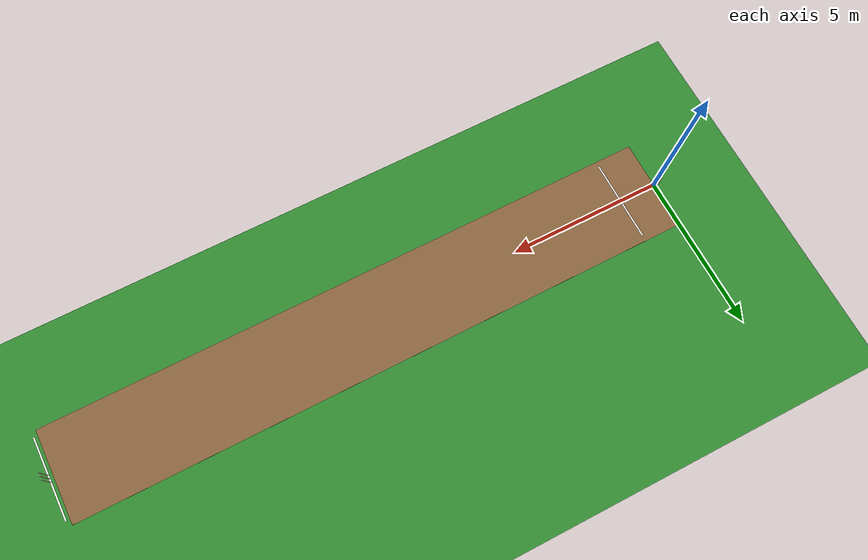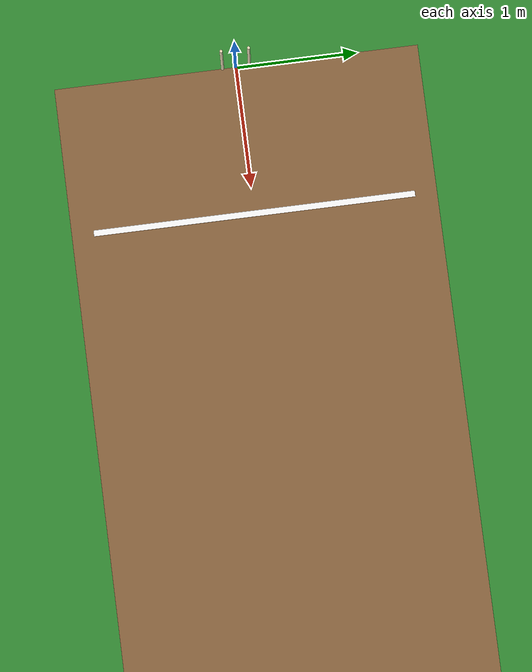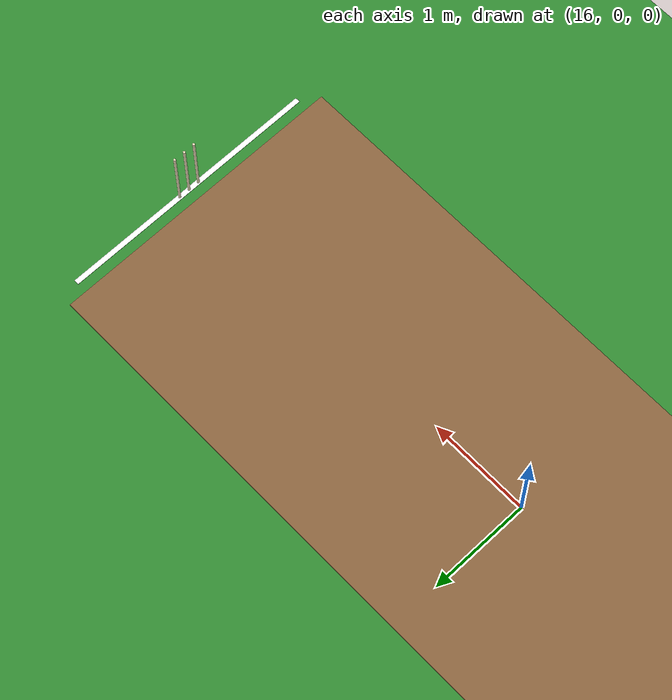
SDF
<?xml version="1.0"?>
<sdf version="1.6">
  <model name="cricket_scene">
    <static>true</static>

    <!-- Pitch strip: 20m long, 3m wide, brown -->
    <link name="pitch">
      <pose>10 0 0.01 0 0 0</pose>
      <collision name="col"><geometry><box><size>20 3 0.02</size></box></geometry></collision>
      <visual name="vis">
        <geometry><box><size>20 3 0.02</size></box></geometry>
        <material>
          <ambient>0.5 0.35 0.2 1</ambient>
          <diffuse>0.55 0.4 0.25 1</diffuse>
        </material>
      </visual>
    </link>

    <!-- Outfield: 50m × 50m, green -->
    <link name="outfield">
      <pose>10 0 0.005 0 0 0</pose>
      <collision name="col"><geometry><box><size>50 50 0.01</size></box></geometry></collision>
      <visual name="vis">
        <geometry><box><size>50 50 0.01</size></box></geometry>
        <material>
          <ambient>0.15 0.45 0.15 1</ambient>
          <diffuse>0.2 0.55 0.2 1</diffuse>
        </material>
      </visual>
    </link>

    <!-- Bowling crease line (white) -->
    <link name="bowling_crease">
      <pose>1.22 0 0.025 0 0 0</pose>
      <visual name="vis">
        <geometry><box><size>0.05 2.64 0.005</size></box></geometry>
        <material><ambient>1 1 1 1</ambient><diffuse>1 1 1 1</diffuse></material>
      </visual>
    </link>

    <!-- Batting crease line (white) at the far end -->
    <link name="batting_crease">
      <pose>20.12 0 0.025 0 0 0</pose>
      <visual name="vis">
        <geometry><box><size>0.05 2.64 0.005</size></box></geometry>
        <material><ambient>1 1 1 1</ambient><diffuse>1 1 1 1</diffuse></material>
      </visual>
    </link>

    <!-- Bowler-end stumps: 3 cylinders 71cm tall, 22cm apart -->
    <link name="stump_bowler_1">
      <pose>0 -0.11 0.355 0 0 0</pose>
      <visual name="vis"><geometry><cylinder><radius>0.012</radius><length>0.71</length></cylinder></geometry>
        <material><ambient>0.9 0.85 0.7 1</ambient><diffuse>0.95 0.9 0.75 1</diffuse></material></visual>
      <collision name="col"><geometry><cylinder><radius>0.012</radius><length>0.71</length></cylinder></geometry></collision>
    </link>
    <link name="stump_bowler_2">
      <pose>0 0 0.355 0 0 0</pose>
      <visual name="vis"><geometry><cylinder><radius>0.012</radius><length>0.71</length></cylinder></geometry>
        <material><ambient>0.9 0.85 0.7 1</ambient><diffuse>0.95 0.9 0.75 1</diffuse></material></visual>
      <collision name="col"><geometry><cylinder><radius>0.012</radius><length>0.71</length></cylinder></geometry></collision>
    </link>
    <link name="stump_bowler_3">
      <pose>0 0.11 0.355 0 0 0</pose>
      <visual name="vis"><geometry><cylinder><radius>0.012</radius><length>0.71</length></cylinder></geometry>
        <material><ambient>0.9 0.85 0.7 1</ambient><diffuse>0.95 0.9 0.75 1</diffuse></material></visual>
      <collision name="col"><geometry><cylinder><radius>0.012</radius><length>0.71</length></cylinder></geometry></collision>
    </link>

    <!-- Batsman-end stumps (mirror at 20.12m) -->
    <link name="stump_batsman_1">
      <pose>20.12 -0.11 0.355 0 0 0</pose>
      <visual name="vis"><geometry><cylinder><radius>0.012</radius><length>0.71</length></cylinder></geometry>
        <material><ambient>0.9 0.85 0.7 1</ambient><diffuse>0.95 0.9 0.75 1</diffuse></material></visual>
      <collision name="col"><geometry><cylinder><radius>0.012</radius><length>0.71</length></cylinder></geometry></collision>
    </link>
    <link name="stump_batsman_2">
      <pose>20.12 0 0.355 0 0 0</pose>
      <visual name="vis"><geometry><cylinder><radius>0.012</radius><length>0.71</length></cylinder></geometry>
        <material><ambient>0.9 0.85 0.7 1</ambient><diffuse>0.95 0.9 0.75 1</diffuse></material></visual>
      <collision name="col"><geometry><cylinder><radius>0.012</radius><length>0.71</length></cylinder></geometry></collision>
    </link>
    <link name="stump_batsman_3">
      <pose>20.12 0.11 0.355 0 0 0</pose>
      <visual name="vis"><geometry><cylinder><radius>0.012</radius><length>0.71</length></cylinder></geometry>
        <material><ambient>0.9 0.85 0.7 1</ambient><diffuse>0.95 0.9 0.75 1</diffuse></material></visual>
      <collision name="col"><geometry><cylinder><radius>0.012</radius><length>0.71</length></cylinder></geometry></collision>
    </link>

  </model>
</sdf>
